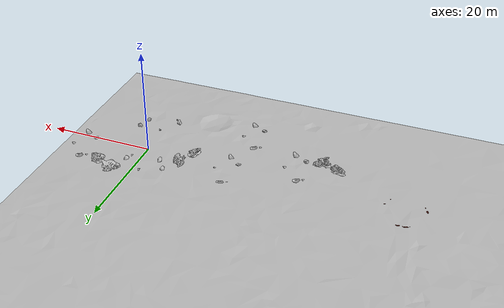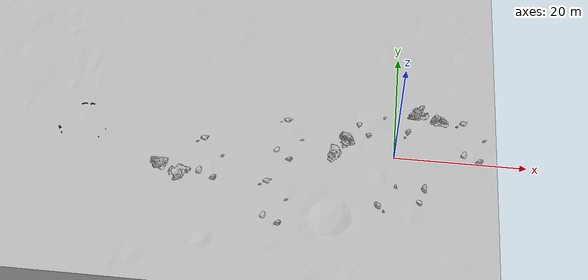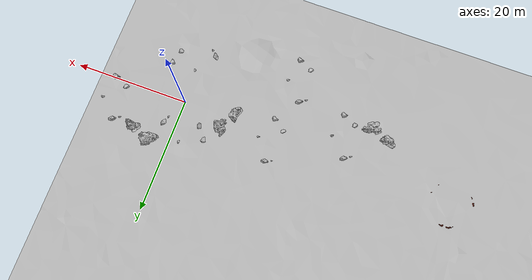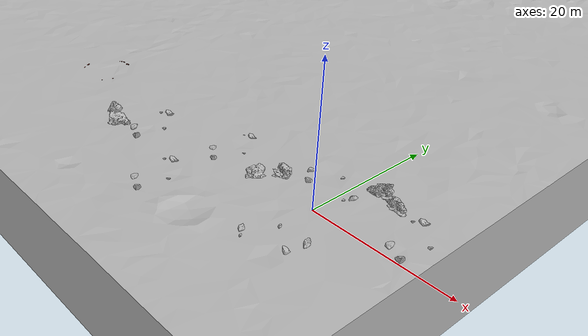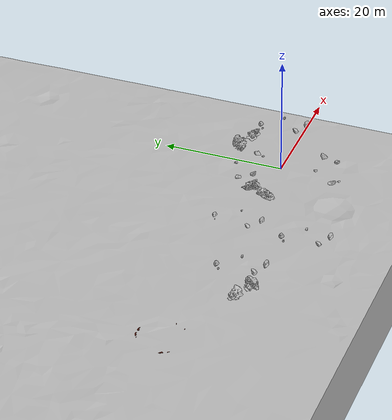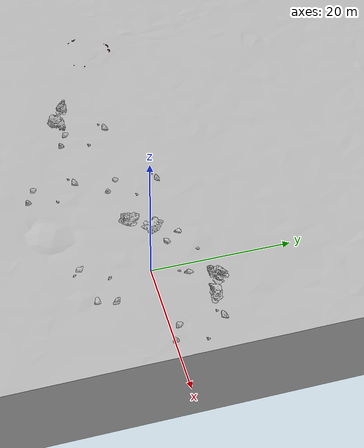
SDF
<sdf version="1.5">
 <world name="default">
  <scene><background>0.79 0.59 0.26 1</background></scene>
  <physics type="ode"><max_step_size>0.001</max_step_size><gravity>0 0 -3.711</gravity></physics>
  <light type="directional" name="directional_light_1">
   <pose>0 20 20 0.1 0.1 0</pose>
   <diffuse>1 1 1 1</diffuse>
   <specular>1 1 1 1</specular>
   <attenuation><range>300</range></attenuation>
   <direction>0.1 0.1 -1</direction>
   <cast_shadows>false</cast_shadows>
  </light>
  <include>
   <uri>model://curiosity_path</uri>
   <name>curiosity_path</name>
   <pose>-136.5 127 15.51 0 0 0</pose>
  </include>
  <include><uri>model://rockformation</uri><name>rockformation</name><pose>1 -9 0.65 0 0 1.75</pose></include>
  <include>
   <uri>model://rockformation</uri>
   <name>rockformation2</name>
   <pose>-1 4 0.80 3.141593 -0.008 1.7915</pose>
  </include>
  <include>
   <uri>model://rockformation</uri>
   <name>rockformation3</name>
   <pose>10.401 4.11 0.65 0 0 0</pose>
  </include>
  <include>
   <uri>model://rockformation</uri>
   <name>rockformation4</name>
   <pose>-18.77 -9.72 0.55 0 0 0</pose>
  </include>
  <include>
   <uri>model://rockformation</uri>
   <name>rockformation5</name>
   <pose>-29.2 -2.79 0.70 0 0 0</pose>
  </include>
  <include>
   <uri>model://rockformation</uri>
   <name>rockformation7</name>
   <pose>-17.39 2.28 0.40 0 0 -0.2</pose>
  </include>
  <include><uri>model://jaggedrock</uri><name>jaggedrock</name><pose>5 7 0.55 0 0 -0.7</pose></include>
  <include><uri>model://jaggedrock</uri><name>jaggedrock2</name><pose>-9 1 0.30 0.2499 0 -2.399</pose></include>
  <include><uri>model://jaggedrock</uri><name>jaggedrock3</name><pose>-33.515 -5 0.45 0 0 2.4</pose></include>
  <include><uri>model://crater</uri><name>crater</name><pose>-48.502 1.5 -2.1 0 0 0</pose></include>
 </world>
</sdf>

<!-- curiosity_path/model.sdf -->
<sdf version="1.5">
  <model name="curiosity_path">
      <static>true</static>
      <link name='link'>
       <collision name="collision">
        <geometry>
            <mesh>
              <uri>model://curiosity_path/meshes/curiosity_path25k.stl</uri>
              <scale>1 1 1</scale>
            </mesh>
        </geometry>
        <surface>
          <contact>
             <collide_bitmask>0xffff</collide_bitmask>
          </contact>
          <friction>
            <ode>
              <mu>100</mu>
              <mu2>50</mu2>
            </ode>
          </friction>
        </surface>
      </collision>
        <visual name='visual'>
          <geometry>
            <mesh>
              <uri>model://curiosity_path/meshes/curiosity_path25k.dae</uri>
              <scale>1 1 1</scale>
            </mesh>
          </geometry>
        </visual>
      </link>
  </model>
</sdf>

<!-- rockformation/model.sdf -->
<sdf version='1.4'>
  <model name="rockformation">
    <static>true</static>
    <link name="link">
        <inertial>
            <mass>1</mass>
            <inertia>
              <ixx>0.166667</ixx>
              <ixy>0</ixy>
              <ixz>0</ixz>
              <iyy>0.166667</iyy>
              <iyz>0</iyz>
              <izz>0.166667</izz>
            </inertia>
            <pose frame=''>0 0 0 0 -0 0</pose>
         </inertial>

         <self_collide>1</self_collide>
         <kinematic>0</kinematic>
         <gravity>0</gravity>

          <collision name="collision">
            <geometry>
              <mesh>
                <uri>model://rockformation/meshes/rockformation.dae</uri>
              </mesh>
            </geometry>
            <surface>
              <friction>
                <ode>
                  <mu>1</mu>
                  <mu2>1</mu2>
                  <fdir1>0 0 0</fdir1>
                  <slip1>0</slip1>
                  <slip2>0</slip2>
                </ode>
                <torsional>
                  <coefficient>1</coefficient>
                  <patch_radius>0</patch_radius>
                  <surface_radius>0</surface_radius>
                  <use_patch_radius>1</use_patch_radius>
                  <ode>
                    <slip>0</slip>
                  </ode>
                </torsional>
              </friction>
              <bounce>
                <restitution_coefficient>0</restitution_coefficient>
                <threshold>1e+06</threshold>
              </bounce>
              <contact>
                <collide_without_contact>0</collide_without_contact>
                <collide_without_contact_bitmask>1</collide_without_contact_bitmask>
                <collide_bitmask>1</collide_bitmask>
                <ode>
                  <soft_cfm>0</soft_cfm>
                  <soft_erp>0.2</soft_erp>
                  <kp>1e+13</kp>
                  <kd>1</kd>
                  <max_vel>0.01</max_vel>
                  <min_depth>0</min_depth>
                </ode>
                <bullet>
                  <split_impulse>1</split_impulse>
                  <split_impulse_penetration_threshold>-0.01</split_impulse_penetration_threshold>
                  <soft_cfm>0</soft_cfm>
                  <soft_erp>0.2</soft_erp>
                  <kp>1e+13</kp>
                  <kd>1</kd>
                </bullet>
              </contact>
            </surface>
          </collision>

          <visual name="visual">
            <geometry>
              <mesh>
                <uri>model://rockformation/meshes/rockformation.dae</uri>
              </mesh>
            </geometry>
          </visual>
    </link>
  </model>
</sdf>

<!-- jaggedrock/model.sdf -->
<sdf version='1.4'>
  <model name="jaggedrock">
    <static>true</static>
    <link name="link">
        <inertial>
            <mass>1</mass>
            <inertia>
              <ixx>0.166667</ixx>
              <ixy>0</ixy>
              <ixz>0</ixz>
              <iyy>0.166667</iyy>
              <iyz>0</iyz>
              <izz>0.166667</izz>
            </inertia>
            <pose frame=''>0 0 0 0 -0 0</pose>
         </inertial>

         <self_collide>1</self_collide>
         <kinematic>0</kinematic>
         <gravity>0</gravity>

          <collision name="collision">
            <geometry>
              <mesh>
                <uri>model://jaggedrock/meshes/jaggedrock_texture.dae</uri>
              </mesh>
            </geometry>
            <surface>
              <friction>
                <ode>
                  <mu>1</mu>
                  <mu2>1</mu2>
                  <fdir1>0 0 0</fdir1>
                  <slip1>0</slip1>
                  <slip2>0</slip2>
                </ode>
                <torsional>
                  <coefficient>1</coefficient>
                  <patch_radius>0</patch_radius>
                  <surface_radius>0</surface_radius>
                  <use_patch_radius>1</use_patch_radius>
                  <ode>
                    <slip>0</slip>
                  </ode>
                </torsional>
              </friction>
              <bounce>
                <restitution_coefficient>0</restitution_coefficient>
                <threshold>1e+06</threshold>
              </bounce>
              <contact>
                <collide_without_contact>0</collide_without_contact>
                <collide_without_contact_bitmask>1</collide_without_contact_bitmask>
                <collide_bitmask>1</collide_bitmask>
                <ode>
                  <soft_cfm>0</soft_cfm>
                  <soft_erp>0.2</soft_erp>
                  <kp>1e+13</kp>
                  <kd>1</kd>
                  <max_vel>0.01</max_vel>
                  <min_depth>0</min_depth>
                </ode>
                <bullet>
                  <split_impulse>1</split_impulse>
                  <split_impulse_penetration_threshold>-0.01</split_impulse_penetration_threshold>
                  <soft_cfm>0</soft_cfm>
                  <soft_erp>0.2</soft_erp>
                  <kp>1e+13</kp>
                  <kd>1</kd>
                </bullet>
              </contact>
            </surface>
          </collision>

          <visual name="visual">
            <geometry>
              <mesh>
                <uri>model://jaggedrock/meshes/jaggedrock_texture.dae</uri>
              </mesh>
            </geometry>
          </visual>
    </link>
  </model>
</sdf>

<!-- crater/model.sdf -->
<sdf version="1.4">
  <model name="crater">
      <static>1</static>
      <link name='link'>
        <inertial>
          <mass>0.25</mass>
          <inertia>
            <ixx>0.00015</ixx>
            <ixy>0.000000</ixy>
            <ixz>0.000000</ixz>
            <iyy>0.00015</iyy>
            <iyz>0.000000</iyz>
            <izz>0.00015</izz>
          </inertia>
        </inertial>
        <collision name='collision'>
          <geometry>
            <mesh>
              <uri>model://crater/meshes/crater_martian_red.dae</uri>
              <scale>1 1 1</scale>
            </mesh>
          </geometry>
          <surface>
            <friction>
              <ode>
                <mu>30.0</mu>
                <mu2>30.0</mu2>
              </ode>
            </friction>
            <contact>
              <ode>
                <kp>1000000.0</kp>
                <kd>100.0</kd>
                <max_vel>1.0</max_vel>
                <min_depth>0.002</min_depth>
              </ode>
            </contact>
          </surface>
        </collision>
        <visual name='visual'>
          <geometry>
            <mesh>
              <uri>model://crater/meshes/crater_martian_red.dae</uri>
              <scale>1 1 1</scale>
            </mesh>
          </geometry>
        </visual>
        <velocity_decay>
          <linear>0.000000</linear>
          <angular>0.000000</angular>
        </velocity_decay>
        <self_collide>0</self_collide>
        <kinematic>0</kinematic>
        <gravity>1</gravity>
      </link>
  </model>
</sdf>
